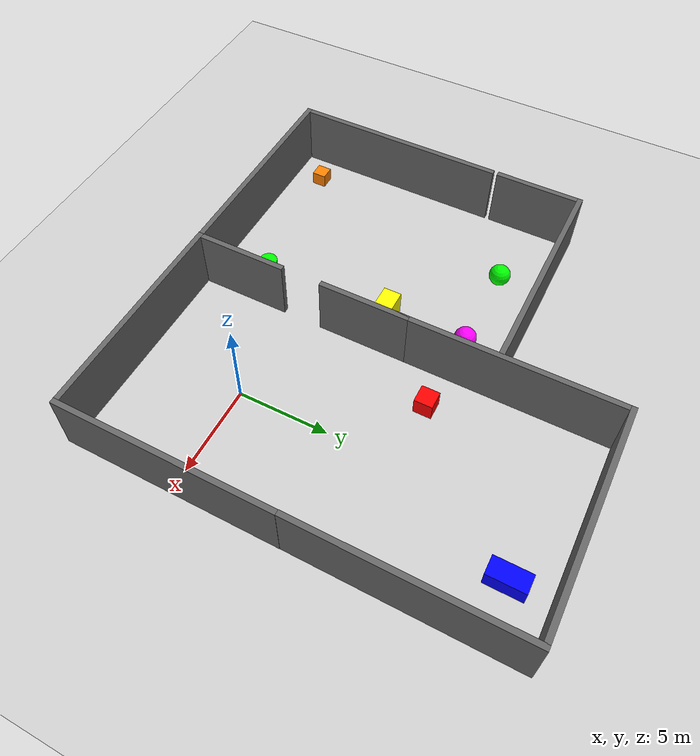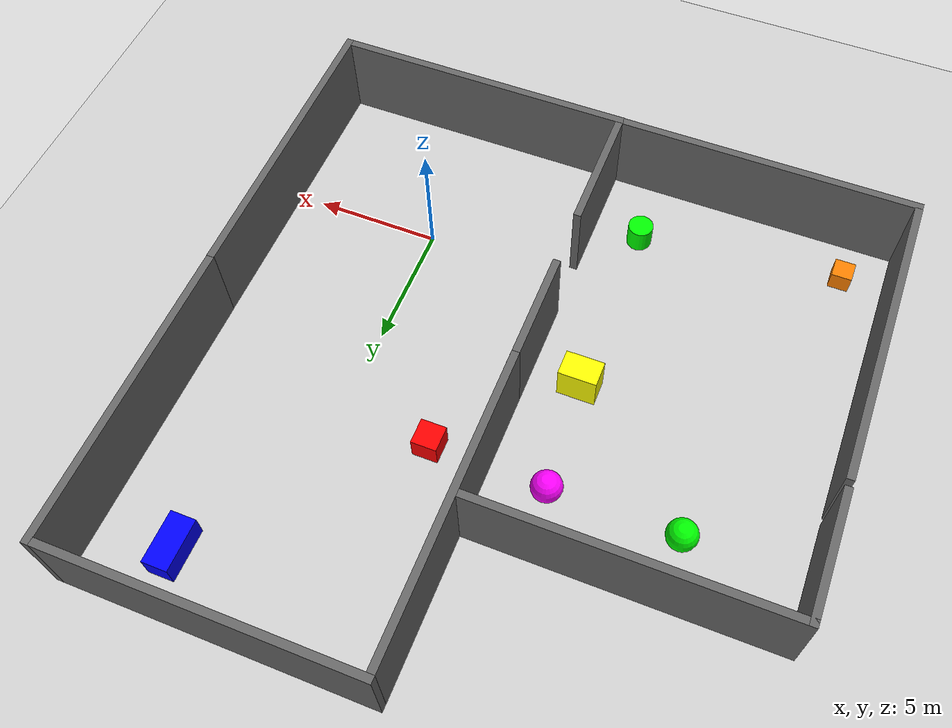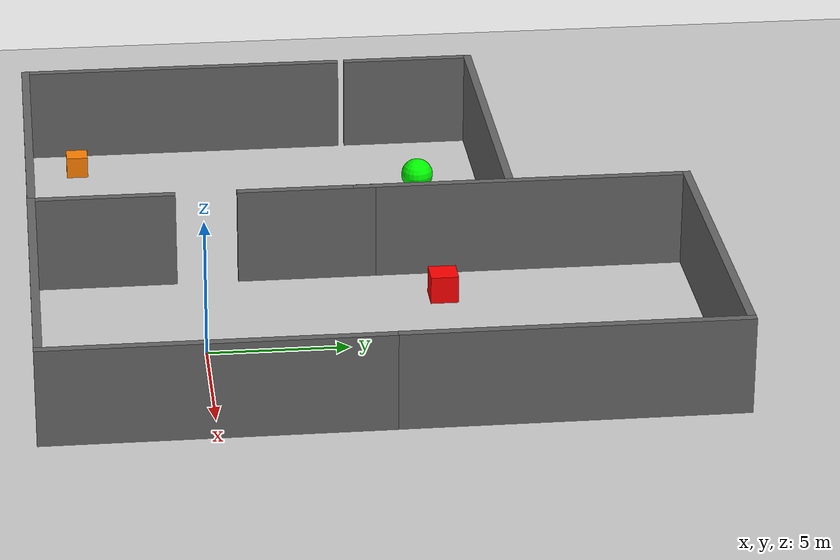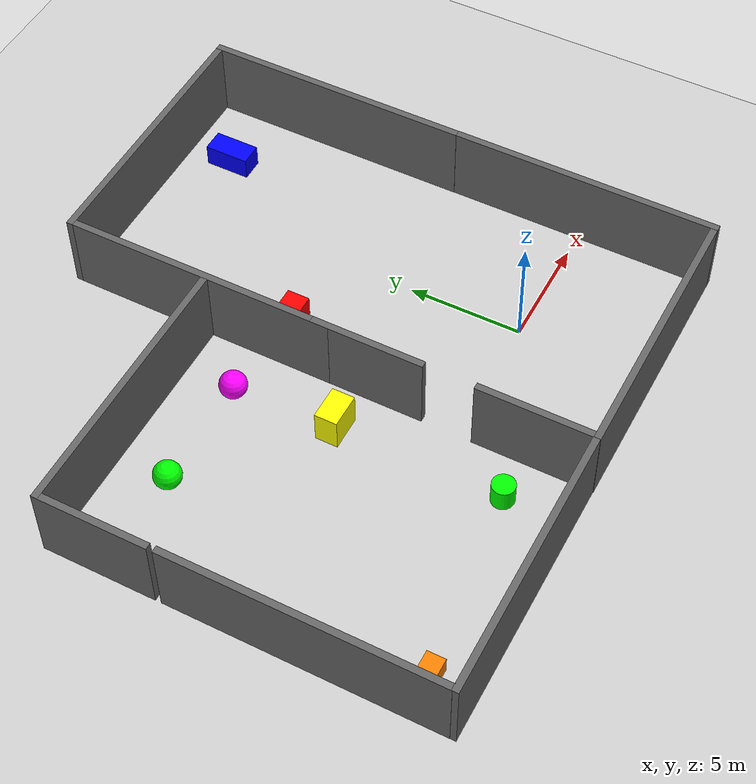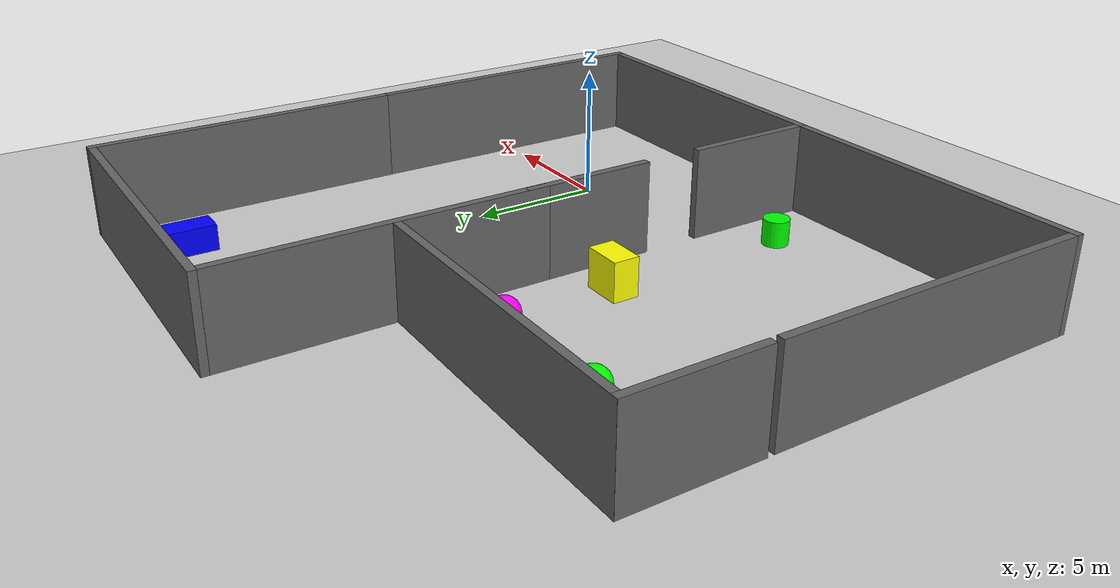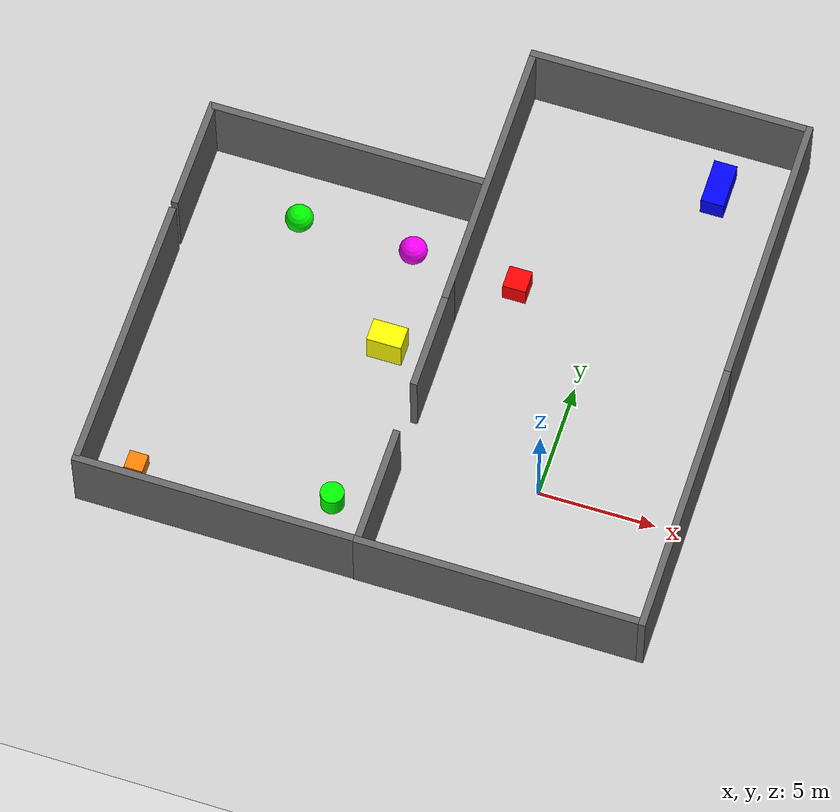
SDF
<sdf version="1.10">
 <world name="room">
  <physics name="1ms" type="ignored">
   <max_step_size>0.001</max_step_size>
   <real_time_factor>1.0</real_time_factor>
  </physics>
  <plugin filename="gz-sim-physics-system" name="gz::sim::systems::Physics"/>
  <plugin filename="gz-sim-user-commands-system" name="gz::sim::systems::UserCommands"/>
  <plugin filename="gz-sim-scene-broadcaster-system" name="gz::sim::systems::SceneBroadcaster"/>
  <plugin filename="gz-sim-sensors-system" name="gz::sim::systems::Sensors">
   <render_engine>ogre2</render_engine>
  </plugin>
  <plugin filename="gz-sim-thermal-sensor-system" name="gz::sim::systems::ThermalSensor"/>
  <light type="directional" name="sun">
   <pose>0 0 10 0 0 0</pose>
   <diffuse>0.8 0.8 0.8 1</diffuse>
   <specular>0.2 0.2 0.2 1</specular>
   <attenuation>
    <range>1000</range>
    <constant>0.9</constant>
    <linear>0.01</linear>
    <quadratic>0.001</quadratic>
   </attenuation>
   <direction>-0.5 0.1 -0.9</direction>
  </light>
  <model name="ground_plane">
   <static>true</static>
   <link name="link">
    <collision name="collision"><geometry><plane><normal>0 0 1</normal></plane></geometry></collision>
    <visual name="visual">
     <geometry><plane><normal>0 0 1</normal><size>100 100</size></plane></geometry>
     <material>
      <ambient>0.8 0.8 0.8 1</ambient>
      <diffuse>0.8 0.8 0.8 1</diffuse>
      <specular>0.8 0.8 0.8 1</specular>
     </material>
    </visual>
   </link>
  </model>
  <include>
   <uri>file:///workspace/models/gazebo/obstacles/walls/horizontalWall0_3x12x3_5</uri>
   <name>horizontalWallBig</name>
   <pose>6.1378297805786133 0 1.75 0 0 0</pose>
  </include>
  <include>
   <uri>file:///workspace/models/gazebo/obstacles/walls/horizontalWall0_3x12x3_5</uri>
   <name>verticalWallBig</name>
   <pose>7.2243547037942335e-06 -5.8478302955627441 1.75 0 0 1.5708000357176291</pose>
  </include>
  <include>
   <uri>file:///workspace/models/gazebo/obstacles/walls/horizontalWall0_3x5x3_5</uri>
   <name>horizontalWallSmall</name>
   <pose>-5.8479700088500977 -3.2032356262207031 1.75 0 0 0</pose>
  </include>
  <include>
   <uri>file:///workspace/models/gazebo/obstacles/walls/horizontalWall0_3x12x3_5</uri>
   <name>horizontalWallBig_1</name>
   <pose>6.1292400360107422 11.98643970489502 1.75 0 0 0</pose>
  </include>
  <include>
   <uri>file:///workspace/models/gazebo/obstacles/walls/verticalWall0_3x12x3_5</uri>
   <name>verticalWallBig_1</name>
   <pose>0.00072676839772611856 17.835100173950195 1.75 0 0 1.5707999672671711</pose>
  </include>
  <include>
   <uri>file:///workspace/models/gazebo/obstacles/walls/horizontalWall0_3x12x3_5</uri>
   <name>horizontalWallBig_2</name>
   <pose>-5.8510937690734863 11.696800231933594 1.75 0 0 0</pose>
  </include>
  <include>
   <uri>file:///workspace/models/gazebo/obstacles/walls/horizontalWall0_3x5x3_5</uri>
   <name>horizontalWallSmall_2</name>
   <pose>-5.849639892578125 4.0064177513122559 1.75 0 0 0</pose>
  </include>
  <include>
   <uri>file:///workspace/models/gazebo/obstacles/walls/verticalWall0_3x12x3_5</uri>
   <name>verticalWallBig_2</name>
   <pose>-11.975589752197266 -5.8330597877502441 1.75 0 0 1.5707999672671717</pose>
  </include>
  <include>
   <uri>file:///workspace/models/gazebo/obstacles/walls/horizontalWall0_3x12x3_5</uri>
   <name>horizontalWallBig_3</name>
   <pose>-17.832462310791016 0.27177301049232483 1.75 0 0 0</pose>
  </include>
  <include>
   <uri>file:///workspace/models/gazebo/obstacles/walls/horizontalWall0_3x5x3_5</uri>
   <name>horizontalWallSmall_3</name>
   <pose>-17.841299057006836 9.0118703842163086 1.75 0 0 0</pose>
  </include>
  <include>
   <uri>file:///workspace/models/gazebo/obstacles/walls/verticalWall0_3x12x3_5</uri>
   <name>verticalWallBig_3</name>
   <pose>-11.987987518310547 11.363300323486328 1.75 0 0 1.5707999672671717</pose>
  </include>
  <include>
   <uri>file:///workspace/models/gazebo/obstacles/shapes/redCube1x1x1</uri>
   <name>redCube</name>
   <pose>-3.6559658050537109 8.7096595764160156 0.5 0 0 0</pose>
  </include>
  <include>
   <uri>file:///workspace/models/gazebo/obstacles/shapes/greenCylinder0_5x1</uri>
   <name>greenCylinder</name>
   <pose>-7.8899140357971191 -3 0.5 0 0 0</pose>
  </include>
  <include>
   <uri>file:///workspace/models/gazebo/obstacles/shapes/blueBox1x2x1</uri>
   <name>blueBox</name>
   <pose>3 15.608985900878906 0.5 0 0 0</pose>
  </include>
  <include>
   <uri>file:///workspace/models/gazebo/obstacles/shapes/yellowBox1_5x1x1_5</uri>
   <name>yellowBox</name>
   <pose>-7.9256100654602051 4.3805632591247559 0.75 0 0 0</pose>
  </include>
  <include>
   <uri>file:///workspace/models/gazebo/obstacles/shapes/pinkBall0_6</uri>
   <name>pinkBall</name>
   <pose>-8.2594108581542969 8.8796701431274414 0.60000002384185791 0 0 0</pose>
  </include>
  <include>
   <uri>file:///workspace/models/gazebo/obstacles/shapes/greenBall0_6</uri>
   <name>greenBall</name>
   <pose>-13.2594108581542969 8.8796701431274414 0.60000002384185791 0 0 0</pose>
  </include>
  <include>
   <uri>file:///workspace/models/gazebo/obstacles/shapes/orangeBox0_8x0_8x0_8</uri>
   <name>orangeBox</name>
   <pose>-16 -4 0.4 0 0 0</pose>
  </include>
 </world>
</sdf>

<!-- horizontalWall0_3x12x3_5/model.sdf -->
<sdf version="1.10">
    <model name="horizontalWall0_3x12x3_5">
      <static>true</static>
      <pose>4.2 0 1.75 0 0 0</pose>
      <link name="link">
        <collision name="collision">
          <geometry><box><size>0.3 12.0 3.5</size></box></geometry>
        </collision>
        <visual name="visual">
          <geometry><box><size>0.3 12.0 3.5</size></box></geometry>
          <material>
            <ambient>0.4 0.4 0.4 1</ambient>
            <diffuse>0.4 0.4 0.4 1</diffuse>
            <specular>0.2 0.2 0.2 1</specular>
          </material>
          <plugin
            filename="gz-sim-thermal-system"
            name="gz::sim::systems::Thermal">
            <temperature>292.1</temperature>
            <emissivity>0.9</emissivity>
          </plugin>
        </visual>
      </link>
    </model>
</sdf>

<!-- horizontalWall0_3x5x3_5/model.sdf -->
<sdf version="1.10">
    <model name="horizontalWall0_3x5x3_5">
      <static>true</static>
      <pose>4.2 0 1.75 0 0 0</pose>
      <link name="link">
        <collision name="collision">
          <geometry><box><size>0.3 5.0 3.5</size></box></geometry>
        </collision>
        <visual name="visual">
          <geometry><box><size>0.3 5.0 3.5</size></box></geometry>
          <material>
            <ambient>0.4 0.4 0.4 1</ambient>
            <diffuse>0.4 0.4 0.4 1</diffuse>
            <specular>0.2 0.2 0.2 1</specular>
          </material>
          <plugin
            filename="gz-sim-thermal-system"
            name="gz::sim::systems::Thermal">
            <temperature>292.1</temperature>
            <emissivity>0.9</emissivity>
          </plugin>
        </visual>
      </link>
    </model>
</sdf>

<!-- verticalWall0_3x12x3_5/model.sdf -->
<sdf version="1.10">
    <model name="verticalWall0_3x12x3_5">
      <static>true</static>
      <pose>0 3.9 1.75 0 0 1.5708</pose>
      <link name="link">
        <collision name="collision">
          <geometry><box><size>0.3 12.0 3.5</size></box></geometry>
        </collision>
        <visual name="visual">
          <geometry><box><size>0.3 12.0 3.5</size></box></geometry>
          <material>
            <ambient>0.4 0.4 0.4 1</ambient>
            <diffuse>0.4 0.4 0.4 1</diffuse>
            <specular>0.2 0.2 0.2 1</specular>
          </material>
          <plugin
            filename="gz-sim-thermal-system"
            name="gz::sim::systems::Thermal">
            <temperature>292.1</temperature>
            <emissivity>0.9</emissivity>
          </plugin>
        </visual>
      </link>
    </model>
</sdf>

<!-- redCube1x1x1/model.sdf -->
<sdf version="1.10">
    <model name="redCube1x1x1">
      <static>true</static>
      <pose>3 2 0.5 0 0 0</pose>
      <link name="link">
        <collision name="collision">
          <geometry><box><size>1 1 1</size></box></geometry>
        </collision>
        <visual name="visual">
          <geometry><box><size>1 1 1</size></box></geometry>
          <material>
            <ambient>1 0 0 1</ambient>
            <diffuse>1 0 0 1</diffuse>
            <specular>0.5 0.5 0.5 1</specular>
          </material>
          <plugin
            filename="gz-sim-thermal-system"
            name="gz::sim::systems::Thermal">
            <temperature>373.50</temperature>
            <emissivity>0.9</emissivity>
          </plugin>
        </visual>
      </link>
    </model>
</sdf>

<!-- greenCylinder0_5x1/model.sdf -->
<sdf version="1.10">
    <model name="greenCylinder0_5x1">
      <static>true</static>
      <pose>-2 -3 0.5 0 0 0</pose>
      <link name="link">
        <temperature>120.0</temperature>
        <collision name="collision">
          <geometry><cylinder><radius>0.5</radius><length>1.0</length></cylinder></geometry>
        </collision>
        <visual name="visual">
          <geometry><cylinder><radius>0.5</radius><length>1.0</length></cylinder></geometry>
          <material>
            <ambient>0 1 0 1</ambient>
            <diffuse>0 1 0 1</diffuse>
          </material>
        <plugin
          filename="gz-sim-thermal-system"
          name="gz::sim::systems::Thermal">
          <temperature>340</temperature>
          <emissivity>0.9</emissivity>
        </plugin>
        </visual>
      </link>
    </model>
</sdf>

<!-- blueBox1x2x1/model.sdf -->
<sdf version="1.10">
    <model name="blueBox1x2x1">
      <static>true</static>
      <pose>3 -2 0.5 0 0 0</pose>
      <link name="link">
        <temperature>300.0</temperature>
        <collision name="collision">
          <geometry><box><size>1 2 1</size></box></geometry>
        </collision>
        <visual name="visual">
          <geometry><box><size>1 2 1</size></box></geometry>
          <material>
            <ambient>0 0 1 1</ambient>
            <diffuse>0 0 1 1</diffuse>
          </material>
          <plugin
            filename="gz-sim-thermal-system"
            name="gz::sim::systems::Thermal">
            <temperature>343.15</temperature>
          </plugin>
        </visual>
      </link>
    </model>
</sdf>

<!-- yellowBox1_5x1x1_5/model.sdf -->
<sdf version="1.10">
    <model name="yellowBox1_5x1x1_5">
      <static>true</static>
      <pose>-3 2 0.75 0 0 0</pose>
      <link name="link">
        <temperature>200.0</temperature>
        <collision name="collision">
          <geometry><box><size>1.5 1 1.5</size></box></geometry>
        </collision>
        <visual name="visual">
          <geometry><box><size>1.5 1 1.5</size></box></geometry>
          <material>
            <ambient>1 1 0 1</ambient>
            <diffuse>1 1 0 1</diffuse>
          </material>
          <plugin
            filename="gz-sim-thermal-system"
            name="gz::sim::systems::Thermal">
            <temperature>325</temperature>
            <emissivity>0.9</emissivity>
          </plugin>
        </visual>
      </link>
    </model>
</sdf>

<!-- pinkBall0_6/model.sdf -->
<sdf version="1.10">
    <model name="pinkBall0_6">
      <static>true</static>
      <pose>1 3 0.6 0 0 0</pose>
      <link name="link">
        <temperature>600.0</temperature>
        <collision name="collision">
          <geometry><sphere><radius>0.6</radius></sphere></geometry>
        </collision>
        <visual name="visual">
          <geometry><sphere><radius>0.6</radius></sphere></geometry>
          <material>
            <ambient>1 0 1 1</ambient>
            <diffuse>1 0 1 1</diffuse>
          </material>
          <plugin
            filename="gz-sim-thermal-system"
            name="gz::sim::systems::Thermal">
            <temperature>313.55</temperature>
            <emissivity>0.9</emissivity>
          </plugin>
        </visual>
      </link>
    </model>
</sdf>

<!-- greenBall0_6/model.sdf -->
<sdf version="1.10">
    <model name="greenBall0_6">
      <static>true</static>
      <pose>1 3 0.6 0 0 0</pose>
      <link name="link">
        <temperature>600.0</temperature>
        <collision name="collision">
          <geometry><sphere><radius>0.6</radius></sphere></geometry>
        </collision>
        <visual name="visual">
          <geometry><sphere><radius>0.6</radius></sphere></geometry>
          <material>
            <ambient>0 1 0 1</ambient>
            <diffuse>0 1 0 1</diffuse>
          </material>
          <plugin
            filename="gz-sim-thermal-system"
            name="gz::sim::systems::Thermal">
            <temperature>313.55</temperature>
            <emissivity>0.9</emissivity>
          </plugin>
        </visual>
      </link>
    </model>
</sdf>

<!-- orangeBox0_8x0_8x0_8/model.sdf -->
<sdf version="1.10">
<model name="orangeBox0_8x0_8x0_8">
  <static>true</static>
  <pose>-2 0 0.4 0 0 0</pose>
  <link name="link">

    <collision name="collision">
      <geometry>
        <box>
          <size>0.8 0.8 0.8</size>
        </box>
      </geometry>
    </collision>

    <!-- Orange box visual -->
    <visual name="visual">
      <geometry>
        <box>
          <size>0.8 0.8 0.8</size>
        </box>
      </geometry>
      <material>
        <ambient>1 0.5 0 1</ambient>
        <diffuse>1 0.5 0 1</diffuse>
      </material>
      <plugin
        filename="gz-sim-thermal-system"
        name="gz::sim::systems::Thermal">
        <temperature>513.15</temperature>
        <emissivity>0.9</emissivity>
      </plugin>
    </visual>

    <!-- Thermal core visual -->
    <visual name="thermal_core">
      <pose>0 0 0.25 1.5708 0 0</pose>
      <geometry>
        <sphere>
          <radius>0.08</radius>
        </sphere>
      </geometry>
      <material>
        <ambient>1 0.4 0 1</ambient>
        <diffuse>1 0.4 0 1</diffuse>
      </material>
      <plugin
        filename="gz-sim-thermal-system"
        name="gz::sim::systems::Thermal">
        <temperature>583.83</temperature>
        <emissivity>0.9</emissivity>
      </plugin>
    </visual>

    <!-- 3. CLEANED PARTICLE EMITTER: Removed invalid nested tags for Ionic -->
    <particle_emitter name="fire" type="box">
      <pose>0 0 0.25 1.5708 0 0</pose>
      <size>0.15 0.15 0.30</size>
      <rate>50</rate>
      <particle_size>0.05 0.05 0.05</particle_size>
      <lifetime>1</lifetime>
      <!-- Simplified for Ionic stability -->
      <min_velocity>2.5</min_velocity>
      <max_velocity>3.5</max_velocity>
      <color_start>0.6 0 0 0</color_start>
      <color_end>1 0.8 0.2 1</color_end>
      <scale_rate>0.4</scale_rate>
      <emitting>true</emitting>
    </particle_emitter>

  </link>
</model>
</sdf>
